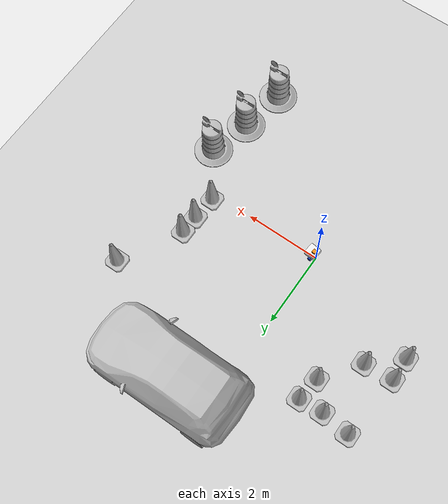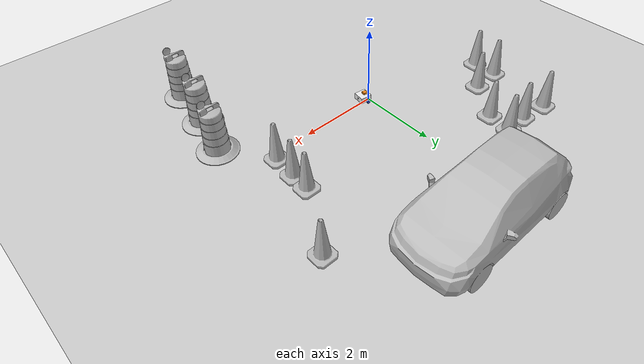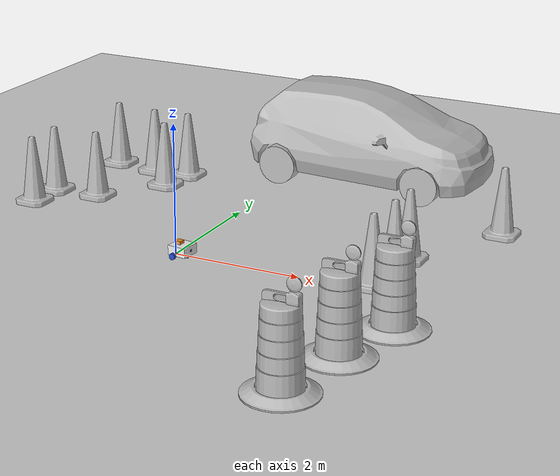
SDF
<sdf version="1.7">
 <world name="default">
  <light name="sun" type="directional">
   <pose>0 0 10 0 -0 0</pose>
   <diffuse>0.8 0.8 0.8 1</diffuse>
   <specular>0.2 0.2 0.2 1</specular>
   <attenuation>
    <range>1000</range>
    <constant>0.9</constant>
    <linear>0.01</linear>
    <quadratic>0.001</quadratic>
   </attenuation>
   <direction>-0.5 0.1 -0.9</direction>
   <spot><inner_angle>0</inner_angle><outer_angle>0</outer_angle><falloff>0</falloff></spot>
  </light>
  <model name="ground_plane">
   <static>1</static>
   <link name="link">
    <collision name="collision">
     <geometry><plane><normal>0 0 1</normal><size>100 100</size></plane></geometry>
     <surface>
      <contact><collide_bitmask>65535</collide_bitmask></contact>
      <friction><ode><mu>100</mu><mu2>50</mu2></ode></friction>
     </surface>
    </collision>
    <visual name="visual">
     <cast_shadows>0</cast_shadows>
     <geometry><plane><normal>0 0 1</normal><size>100 100</size></plane></geometry>
     <material>
      <script><uri>file://media/materials/scripts/gazebo.material</uri><name>Gazebo/Grey</name></script>
     </material>
    </visual>
   </link>
  </model>
  <gravity>0 0 -9.8</gravity>
  <magnetic_field>6e-06 2.3e-05 -4.2e-05</magnetic_field>
  <atmosphere type="adiabatic"/>
  <physics type="ode">
   <max_step_size>0.001</max_step_size>
   <real_time_factor>1</real_time_factor>
   <real_time_update_rate>1000</real_time_update_rate>
  </physics>
  <scene><ambient>0.4 0.4 0.4 1</ambient><background>0.7 0.7 0.7 1</background><shadows>1</shadows></scene>
  <spherical_coordinates>
   <surface_model>EARTH_WGS84</surface_model>
   <latitude_deg>0</latitude_deg>
   <longitude_deg>0</longitude_deg>
   <elevation>0</elevation>
   <heading_deg>0</heading_deg>
  </spherical_coordinates>
  <model name="my_bot">
   <link name="base_link">
    <inertial>
     <pose>0.04875 0 0.090625 0 -0 0</pose>
     <mass>0.8</mass>
     <inertia>
      <ixx>0.00730635</ixx>
      <ixy>0</ixy>
      <ixz>0.00165938</ixz>
      <iyy>0.0086151</iyy>
      <iyz>0</iyz>
      <izz>0.00915875</izz>
     </inertia>
    </inertial>
    <collision name="base_link_fixed_joint_lump__chassis_collision">
     <pose>0.05 0 0.075 0 -0 0</pose>
     <geometry><box><size>0.3 0.3 0.15</size></box></geometry>
    </collision>
    <collision name="base_link_fixed_joint_lump__caster_wheel_collision_1">
     <pose>0.14 0 0 0 -0 0</pose>
     <geometry><sphere><radius>0.05</radius></sphere></geometry>
     <surface><friction><ode><mu>0.001</mu><mu2>0.001</mu2></ode></friction></surface>
    </collision>
    <collision name="base_link_fixed_joint_lump__laser_frame_collision_2">
     <pose>0 0 0.175 0 -0 0</pose>
     <geometry><cylinder><length>0.04</length><radius>0.05</radius></cylinder></geometry>
    </collision>
    <collision name="base_link_fixed_joint_lump__laser_frame1_collision_3">
     <pose>0 0 0.175 0 -0 0</pose>
     <geometry><box><size>0.1 0.1 0.05</size></box></geometry>
    </collision>
    <visual name="base_link_fixed_joint_lump__chassis_visual">
     <pose>0.05 0 0.075 0 -0 0</pose>
     <geometry><box><size>0.3 0.3 0.15</size></box></geometry>
     <material>
      <script><name>Gazebo/White</name><uri>file://media/materials/scripts/gazebo.material</uri></script>
     </material>
    </visual>
    <visual name="base_link_fixed_joint_lump__camera_link_visual_1">
     <pose>0.205 0 0.08 0 -0 0</pose>
     <geometry><box><size>0.01 0.03 0.03</size></box></geometry>
     <material>
      <script><name>Gazebo/Black</name><uri>file://media/materials/scripts/gazebo.material</uri></script>
     </material>
    </visual>
    <visual name="base_link_fixed_joint_lump__caster_wheel_visual_2">
     <pose>0.14 0 0 0 -0 0</pose>
     <geometry><sphere><radius>0.05</radius></sphere></geometry>
     <material>
      <script><name>Gazebo/Black</name><uri>file://media/materials/scripts/gazebo.material</uri></script>
     </material>
    </visual>
    <visual name="base_link_fixed_joint_lump__laser_frame_visual_3">
     <pose>0 0 0.175 0 -0 0</pose>
     <geometry><cylinder><length>0.04</length><radius>0.05</radius></cylinder></geometry>
     <material>
      <script><name>Gazebo/Red</name><uri>file://media/materials/scripts/gazebo.material</uri></script>
     </material>
    </visual>
    <visual name="base_link_fixed_joint_lump__laser_frame1_visual_4">
     <pose>0 0 0.175 0 -0 0</pose>
     <geometry><box><size>0.1 0.1 0.05</size></box></geometry>
     <material>
      <script><name>Gazebo/Orange</name><uri>file://media/materials/scripts/gazebo.material</uri></script>
     </material>
    </visual>
    <sensor name="camera" type="camera">
     <visualize>1</visualize>
     <update_rate>10</update_rate>
     <camera>
      <horizontal_fov>1.089</horizontal_fov>
      <image><format>R8G8B8</format><width>640</width><height>480</height></image>
      <clip><near>0.05</near><far>8</far></clip>
     </camera>
     <plugin name="camera_controller" filename="libgazebo_ros_camera.so">
      <frame_name>camera_link_optical</frame_name>
     </plugin>
     <pose>0.205 0 0.08 0 -0 0</pose>
    </sensor>
    <sensor name="laser" type="ray">
     <visualize>1</visualize>
     <update_rate>10</update_rate>
     <ray>
      <scan>
       <horizontal>
        <samples>360</samples>
        <min_angle>-3.14</min_angle>
        <max_angle>3.14</max_angle>
        <resolution>1</resolution>
       </horizontal>
       <vertical><samples>1</samples><min_angle>0</min_angle><max_angle>0</max_angle></vertical>
      </scan>
      <range><min>0.3</min><max>12</max></range>
     </ray>
     <plugin name="laser_controller" filename="libgazebo_ros_ray_sensor.so">
      <ros><argument>~/out:=scan</argument></ros>
      <output_type>sensor_msgs/LaserScan</output_type>
      <frame_name>laser_frame</frame_name>
     </plugin>
     <pose>0 0 0.175 0 -0 0</pose>
    </sensor>
    <sensor name="laser" type="ray">
     <visualize>1</visualize>
     <update_rate>10</update_rate>
     <ray>
      <scan>
       <horizontal>
        <samples>130</samples>
        <min_angle>-0.65</min_angle>
        <max_angle>0.65</max_angle>
        <resolution>1</resolution>
       </horizontal>
       <vertical><samples>1</samples><min_angle>0</min_angle><max_angle>0</max_angle></vertical>
      </scan>
      <range><min>0.3</min><max>12</max></range>
     </ray>
     <plugin name="laser_controller1" filename="libgazebo_ros_ray_sensor.so">
      <ros><argument>~/out:=scan</argument></ros>
      <output_type>sensor_msgs/LaserScan</output_type>
      <frame_name>laser_frame1</frame_name>
     </plugin>
     <pose>0 0 0.175 0 -0 0</pose>
    </sensor>
   </link>
   <joint name="left_wheel_joint" type="revolute">
    <pose relative_to="base_link">0 0.175 0 -1.5708 0 0</pose>
    <parent>base_link</parent>
    <child>left_wheel</child>
    <axis>
     <xyz>0 0 1</xyz>
     <limit><lower>-1e+16</lower><upper>1e+16</upper></limit>
     <dynamics><spring_reference>0</spring_reference><spring_stiffness>0</spring_stiffness></dynamics>
    </axis>
   </joint>
   <link name="left_wheel">
    <pose relative_to="left_wheel_joint">0 0 0 0 -0 0</pose>
    <inertial>
     <mass>0.1</mass>
     <inertia>
      <ixx>7.58333e-05</ixx>
      <ixy>0</ixy>
      <ixz>0</ixz>
      <iyy>7.58333e-05</iyy>
      <iyz>0</iyz>
      <izz>0.000125</izz>
     </inertia>
    </inertial>
    <collision name="left_wheel_collision">
     <geometry><cylinder><length>0.04</length><radius>0.05</radius></cylinder></geometry>
    </collision>
    <visual name="left_wheel_visual">
     <geometry><cylinder><length>0.04</length><radius>0.05</radius></cylinder></geometry>
     <material>
      <script><name>Gazebo/Blue</name><uri>file://media/materials/scripts/gazebo.material</uri></script>
     </material>
    </visual>
   </link>
   <joint name="right_wheel_joint" type="revolute">
    <pose relative_to="base_link">0 -0.175 0 1.5708 -0 0</pose>
    <parent>base_link</parent>
    <child>right_wheel</child>
    <axis>
     <xyz>0 0 -1</xyz>
     <limit><lower>-1e+16</lower><upper>1e+16</upper></limit>
     <dynamics><spring_reference>0</spring_reference><spring_stiffness>0</spring_stiffness></dynamics>
    </axis>
   </joint>
   <link name="right_wheel">
    <pose relative_to="right_wheel_joint">0 0 0 0 -0 0</pose>
    <inertial>
     <mass>0.1</mass>
     <inertia>
      <ixx>7.58333e-05</ixx>
      <ixy>0</ixy>
      <ixz>0</ixz>
      <iyy>7.58333e-05</iyy>
      <iyz>0</iyz>
      <izz>0.000125</izz>
     </inertia>
    </inertial>
    <collision name="right_wheel_collision">
     <geometry><cylinder><length>0.04</length><radius>0.05</radius></cylinder></geometry>
    </collision>
    <visual name="right_wheel_visual">
     <geometry><cylinder><length>0.04</length><radius>0.05</radius></cylinder></geometry>
     <material>
      <script><name>Gazebo/Blue</name><uri>file://media/materials/scripts/gazebo.material</uri></script>
     </material>
    </visual>
   </link>
   <static>0</static>
   <plugin name="diff_drive" filename="libgazebo_ros_diff_drive.so">
    <left_joint>left_wheel_joint</left_joint>
    <right_joint>right_wheel_joint</right_joint>
    <wheel_separation>0.35</wheel_separation>
    <wheel_diameter>0.1</wheel_diameter>
    <max_wheel_torque>200</max_wheel_torque>
    <max_wheel_acceleration>10.0</max_wheel_acceleration>
    <odometry_frame>odom</odometry_frame>
    <robot_base_frame>base_link</robot_base_frame>
    <publish_odom>1</publish_odom>
    <publish_odom_tf>1</publish_odom_tf>
    <publish_wheel_tf>1</publish_wheel_tf>
   </plugin>
   <pose>0.090059 -0.046302 0.049995 2.8e-05 -5e-06 -0.120517</pose>
  </model>
  <model name="Construction Barrel">
   <link name="link">
    <inertial>
     <pose>0 0 0.4 0 -0 0</pose>
     <mass>500</mass>
     <inertia><ixx>51.2096</ixx><iyy>51.2096</iyy><izz>25</izz><ixy>0</ixy><ixz>0</ixz><iyz>0</iyz></inertia>
    </inertial>
    <collision name="collision">
     <geometry><mesh><uri>model://construction_barrel/meshes/construction_barrel.dae</uri></mesh></geometry>
    </collision>
    <visual name="visual">
     <geometry><mesh><uri>model://construction_barrel/meshes/construction_barrel.dae</uri></mesh></geometry>
    </visual>
   </link>
   <pose>3.3797 -3.31893 1e-06 3e-06 2e-06 -2.3e-05</pose>
  </model>
  <model name="Construction Barrel_0">
   <link name="link">
    <inertial>
     <pose>0 0 0.4 0 -0 0</pose>
     <mass>500</mass>
     <inertia><ixx>51.2096</ixx><iyy>51.2096</iyy><izz>25</izz><ixy>0</ixy><ixz>0</ixz><iyz>0</iyz></inertia>
    </inertial>
    <collision name="collision">
     <geometry><mesh><uri>model://construction_barrel/meshes/construction_barrel.dae</uri></mesh></geometry>
    </collision>
    <visual name="visual">
     <geometry><mesh><uri>model://construction_barrel/meshes/construction_barrel.dae</uri></mesh></geometry>
    </visual>
   </link>
   <pose>3.58889 -2.10643 1e-06 3e-06 2e-06 -2.2e-05</pose>
  </model>
  <model name="Construction Barrel_1">
   <link name="link">
    <inertial>
     <pose>0 0 0.4 0 -0 0</pose>
     <mass>500</mass>
     <inertia><ixx>51.2096</ixx><iyy>51.2096</iyy><izz>25</izz><ixy>0</ixy><ixz>0</ixz><iyz>0</iyz></inertia>
    </inertial>
    <collision name="collision">
     <geometry><mesh><uri>model://construction_barrel/meshes/construction_barrel.dae</uri></mesh></geometry>
    </collision>
    <visual name="visual">
     <geometry><mesh><uri>model://construction_barrel/meshes/construction_barrel.dae</uri></mesh></geometry>
    </visual>
   </link>
   <pose>3.87148 -1.01473 1e-06 3e-06 2e-06 -2.1e-05</pose>
  </model>
  <model name="hatchback">
   <static>1</static>
   <link name="link">
    <collision name="collision">
     <pose>0 0 0 0 -0 1.5708</pose>
     <geometry>
      <mesh><scale>0.0254 0.0254 0.0254</scale><uri>model://hatchback/meshes/hatchback.obj</uri></mesh>
     </geometry>
    </collision>
    <visual name="visual">
     <pose>0 0 0 0 -0 1.5708</pose>
     <geometry>
      <mesh><scale>0.0254 0.0254 0.0254</scale><uri>model://hatchback/meshes/hatchback.obj</uri></mesh>
     </geometry>
    </visual>
   </link>
   <pose>0.850645 4.47733 0 0 -0 0</pose>
  </model>
  <model name="Construction Cone">
   <link name="link">
    <collision name="collision">
     <geometry>
      <mesh><scale>10 10 10</scale><uri>model://construction_cone/meshes/construction_cone.dae</uri></mesh>
     </geometry>
    </collision>
    <visual name="visual">
     <geometry>
      <mesh><scale>10 10 10</scale><uri>model://construction_cone/meshes/construction_cone.dae</uri></mesh>
     </geometry>
    </visual>
    <inertial>
     <inertia><ixx>1</ixx><ixy>0</ixy><ixz>0</ixz><iyy>1</iyy><iyz>0</iyz><izz>1</izz></inertia>
     <mass>1</mass>
    </inertial>
   </link>
   <pose>-3.17773 0.936053 -4e-06 4e-06 -1e-06 0</pose>
  </model>
  <model name="Construction Cone_0">
   <link name="link">
    <collision name="collision">
     <geometry>
      <mesh><scale>10 10 10</scale><uri>model://construction_cone/meshes/construction_cone.dae</uri></mesh>
     </geometry>
    </collision>
    <visual name="visual">
     <geometry>
      <mesh><scale>10 10 10</scale><uri>model://construction_cone/meshes/construction_cone.dae</uri></mesh>
     </geometry>
    </visual>
    <inertial>
     <inertia><ixx>1</ixx><ixy>0</ixy><ixz>0</ixz><iyy>1</iyy><iyz>0</iyz><izz>1</izz></inertia>
     <mass>1</mass>
    </inertial>
   </link>
   <pose>-3.17583 1.55305 -0 -0 -0 -0</pose>
  </model>
  <model name="Construction Cone_1">
   <link name="link">
    <collision name="collision">
     <geometry>
      <mesh><scale>10 10 10</scale><uri>model://construction_cone/meshes/construction_cone.dae</uri></mesh>
     </geometry>
    </collision>
    <visual name="visual">
     <geometry>
      <mesh><scale>10 10 10</scale><uri>model://construction_cone/meshes/construction_cone.dae</uri></mesh>
     </geometry>
    </visual>
    <inertial>
     <inertia><ixx>1</ixx><ixy>0</ixy><ixz>0</ixz><iyy>1</iyy><iyz>0</iyz><izz>1</izz></inertia>
     <mass>1</mass>
    </inertial>
   </link>
   <pose>-2.41235 1.61221 -0 0 -0 0</pose>
  </model>
  <model name="Construction Cone_2">
   <link name="link">
    <collision name="collision">
     <geometry>
      <mesh><scale>10 10 10</scale><uri>model://construction_cone/meshes/construction_cone.dae</uri></mesh>
     </geometry>
    </collision>
    <visual name="visual">
     <geometry>
      <mesh><scale>10 10 10</scale><uri>model://construction_cone/meshes/construction_cone.dae</uri></mesh>
     </geometry>
    </visual>
    <inertial>
     <inertia><ixx>1</ixx><ixy>0</ixy><ixz>0</ixz><iyy>1</iyy><iyz>0</iyz><izz>1</izz></inertia>
     <mass>1</mass>
    </inertial>
   </link>
   <pose>3.06125 0.175701 -4e-06 4e-06 -1e-06 0</pose>
  </model>
  <model name="Construction Cone_3">
   <link name="link">
    <collision name="collision">
     <geometry>
      <mesh><scale>10 10 10</scale><uri>model://construction_cone/meshes/construction_cone.dae</uri></mesh>
     </geometry>
    </collision>
    <visual name="visual">
     <geometry>
      <mesh><scale>10 10 10</scale><uri>model://construction_cone/meshes/construction_cone.dae</uri></mesh>
     </geometry>
    </visual>
    <inertial>
     <inertia><ixx>1</ixx><ixy>0</ixy><ixz>0</ixz><iyy>1</iyy><iyz>0</iyz><izz>1</izz></inertia>
     <mass>1</mass>
    </inertial>
   </link>
   <pose>3.11477 0.827665 0 0 -0 8e-06</pose>
  </model>
  <model name="Construction Cone_4">
   <link name="link">
    <collision name="collision">
     <geometry>
      <mesh><scale>10 10 10</scale><uri>model://construction_cone/meshes/construction_cone.dae</uri></mesh>
     </geometry>
    </collision>
    <visual name="visual">
     <geometry>
      <mesh><scale>10 10 10</scale><uri>model://construction_cone/meshes/construction_cone.dae</uri></mesh>
     </geometry>
    </visual>
    <inertial>
     <inertia><ixx>1</ixx><ixy>0</ixy><ixz>0</ixz><iyy>1</iyy><iyz>0</iyz><izz>1</izz></inertia>
     <mass>1</mass>
    </inertial>
   </link>
   <pose>3.14022 1.33059 -0 0 -1e-06 -7e-06</pose>
  </model>
  <model name="Construction Cone_5">
   <link name="link">
    <collision name="collision">
     <geometry>
      <mesh><scale>10 10 10</scale><uri>model://construction_cone/meshes/construction_cone.dae</uri></mesh>
     </geometry>
    </collision>
    <visual name="visual">
     <geometry>
      <mesh><scale>10 10 10</scale><uri>model://construction_cone/meshes/construction_cone.dae</uri></mesh>
     </geometry>
    </visual>
    <inertial>
     <inertia><ixx>1</ixx><ixy>0</ixy><ixz>0</ixz><iyy>1</iyy><iyz>0</iyz><izz>1</izz></inertia>
     <mass>1</mass>
    </inertial>
   </link>
   <pose>-2.23065 3.14471 -0 0 -0 0</pose>
  </model>
  <model name="Construction Cone_6">
   <link name="link">
    <collision name="collision">
     <geometry>
      <mesh><scale>10 10 10</scale><uri>model://construction_cone/meshes/construction_cone.dae</uri></mesh>
     </geometry>
    </collision>
    <visual name="visual">
     <geometry>
      <mesh><scale>10 10 10</scale><uri>model://construction_cone/meshes/construction_cone.dae</uri></mesh>
     </geometry>
    </visual>
    <inertial>
     <inertia><ixx>1</ixx><ixy>0</ixy><ixz>0</ixz><iyy>1</iyy><iyz>0</iyz><izz>1</izz></inertia>
     <mass>1</mass>
    </inertial>
   </link>
   <pose>-2.98389 3.22926 -8e-06 0 1e-06 0</pose>
  </model>
  <model name="Construction Cone_7">
   <link name="link">
    <collision name="collision">
     <geometry>
      <mesh><scale>10 10 10</scale><uri>model://construction_cone/meshes/construction_cone.dae</uri></mesh>
     </geometry>
    </collision>
    <visual name="visual">
     <geometry>
      <mesh><scale>10 10 10</scale><uri>model://construction_cone/meshes/construction_cone.dae</uri></mesh>
     </geometry>
    </visual>
    <inertial>
     <inertia><ixx>1</ixx><ixy>0</ixy><ixz>0</ixz><iyy>1</iyy><iyz>0</iyz><izz>1</izz></inertia>
     <mass>1</mass>
    </inertial>
   </link>
   <pose>-1.60823 3.18706 -4e-06 4e-06 -1e-06 0</pose>
  </model>
  <model name="Construction Cone_8">
   <link name="link">
    <collision name="collision">
     <geometry>
      <mesh><scale>10 10 10</scale><uri>model://construction_cone/meshes/construction_cone.dae</uri></mesh>
     </geometry>
    </collision>
    <visual name="visual">
     <geometry>
      <mesh><scale>10 10 10</scale><uri>model://construction_cone/meshes/construction_cone.dae</uri></mesh>
     </geometry>
    </visual>
    <inertial>
     <inertia><ixx>1</ixx><ixy>0</ixy><ixz>0</ixz><iyy>1</iyy><iyz>0</iyz><izz>1</izz></inertia>
     <mass>1</mass>
    </inertial>
   </link>
   <pose>-1.6925 2.55648 -0 0 -0 0</pose>
  </model>
  <model name="Construction Cone_9">
   <link name="link">
    <collision name="collision">
     <geometry>
      <mesh><scale>10 10 10</scale><uri>model://construction_cone/meshes/construction_cone.dae</uri></mesh>
     </geometry>
    </collision>
    <visual name="visual">
     <geometry>
      <mesh><scale>10 10 10</scale><uri>model://construction_cone/meshes/construction_cone.dae</uri></mesh>
     </geometry>
    </visual>
    <inertial>
     <inertia><ixx>1</ixx><ixy>0</ixy><ixz>0</ixz><iyy>1</iyy><iyz>0</iyz><izz>1</izz></inertia>
     <mass>1</mass>
    </inertial>
   </link>
   <pose>4.03249 2.88865 -0 0 -1e-06 0</pose>
  </model>
 </world>
</sdf>
